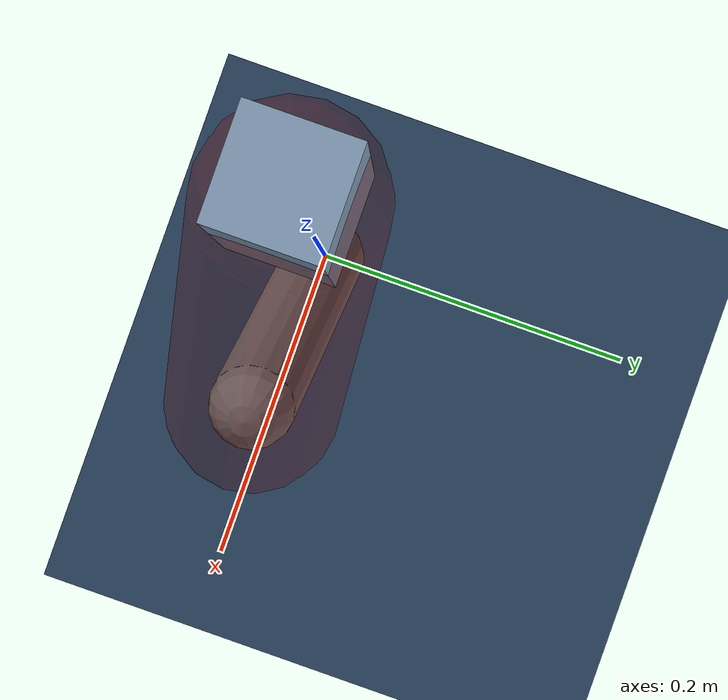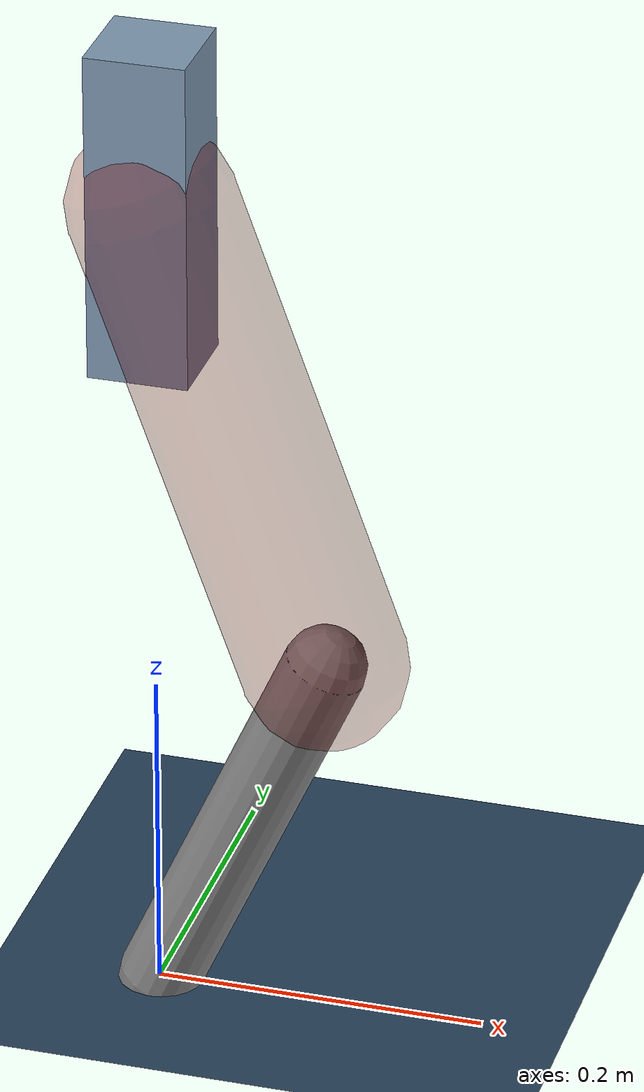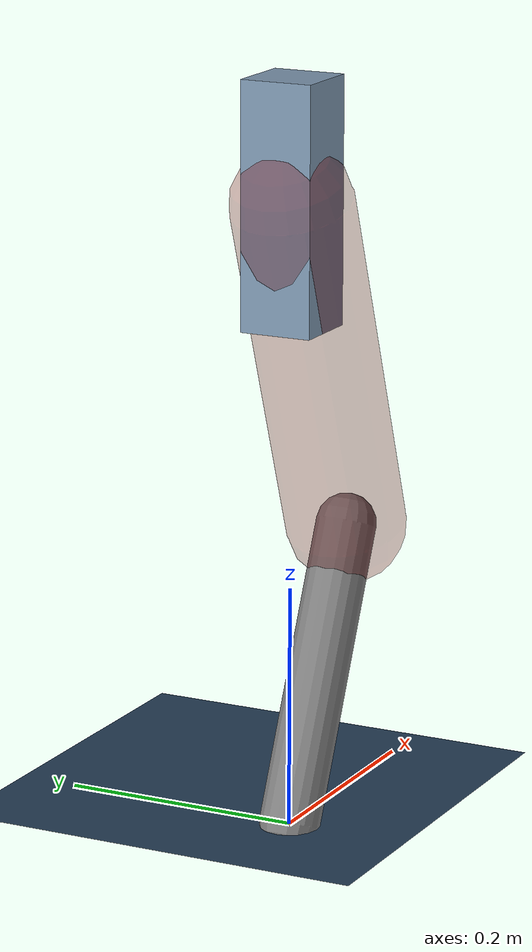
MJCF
<mujoco model="Hopper2D">
	<compiler inertiafromgeom="true" angle="radian" />
	<option timestep="0.001" integrator="implicit" cone="elliptic" solver="Newton" tolerance="1e-10" />

	<default>
		<geom contype="1" conaffinity="1" condim="3" friction="2 0.005 0.0001" solref="0.005 1" />
		<joint limited="true" damping="0.1" />
	</default>

	<asset>
		<texture name="skybox" type="skybox" builtin="gradient" rgb1=".4 .6 .8" rgb2="0 0 0" width="800" height="800" />
		<texture name="grid" type="2d" builtin="checker" rgb1=".1 .2 .3" rgb2=".2 .3 .4" width="300" height="300" mark="edge" markrgb=".2 .3 .4" />
		<material name="ground" texture="grid" texrepeat="1 1" texuniform="true" reflectance="0.1" />
		<material name="leg" rgba="0.5 0.6 0.7 1" />
	</asset>

	<worldbody>

		<geom name="floor" type="plane" size="5 5 0.25" material="ground" />

		<light directional="false" diffuse="0.8 0.8 0.8" specular="0.3 0.3 0.3" pos="0 0 2" dir="0 0 -1" />
		<light mode="targetbodycom" target="base" directional="false" diffuse="0.8 0.8 0.8" specular="0.3 0.3 0.3" pos="0 0 2" dir="0 0 -1" />

		<camera name="fixed" pos="0 -2 1" xyaxes="1 0 0 0 0 1" />
		<camera name="tracking" mode="trackcom" pos="0 -3 1" />

		<body name="root" pos="0 0 0.5138666164165595">
			<joint name="slide_x" type="slide" axis="1 0 0" range="-100 100" />
			<joint name="slide_z" type="slide" axis="0 0 1" range="0 10" />

			<body name="base" pos="0 0 0">
				<geom name="torso" type="box" size="0.03 0.03 0.1" mass="2.315" material="leg" />

				<body name="link1" pos="0 0 0" euler="0 1.2230323255720381 0">
					<joint type="hinge" axis="0 -1 0" pos="0 0 0" name="hinge1" limited="true" range="-3.14 3.14" stiffness="0" damping="0.1" />
					<geom name="thigh" type="capsule" fromto="0 0 0 0.3030899569324117 0 0" size="0.05" rgba="0.5 0 0 0.3" mass="0.9971428837175116" />

					<body name="link2" pos="0.3030899569324117 0 0" euler="0 0.7716265347684337 0">
						<joint type="hinge" axis="0 -1 0" pos="0 0 0" name="hinge2" limited="true" range="-3.14 3.14" stiffness="0" damping="0.1" />
						<geom name="shank" type="capsule" fromto="0 0 0 0.25114505112647134 0 0" size="0.025" mass="0.4434305460138242" />

					</body>
				</body>
			</body>
		</body>
	</worldbody>

	<actuator>
		<motor name="torque1" joint="hinge1" ctrlrange="-77.50951491248614 77.50951491248614" ctrllimited="true" gear="1" />
		<motor name="torque2" joint="hinge2" ctrlrange="-85.41332418008997 85.41332418008997" ctrllimited="true" gear="1" />
	</actuator>
</mujoco>
